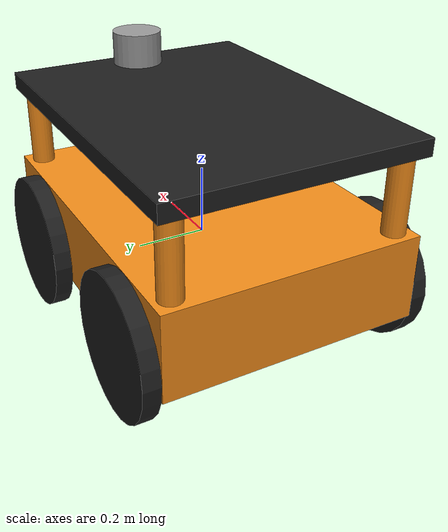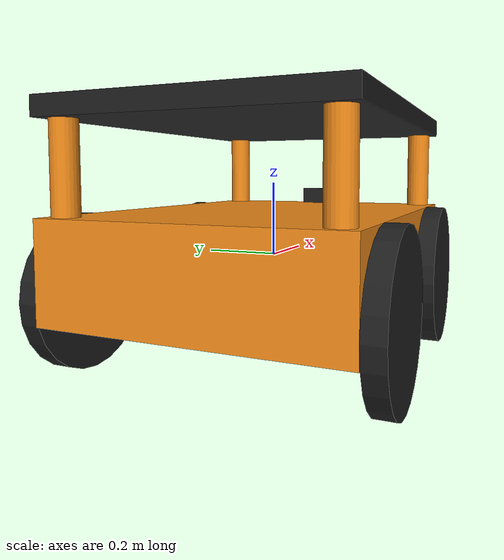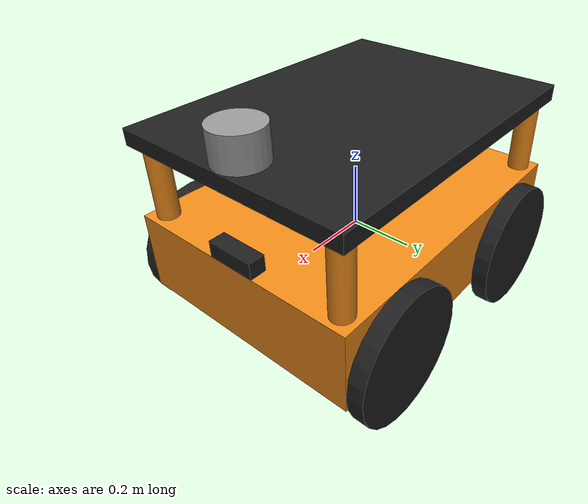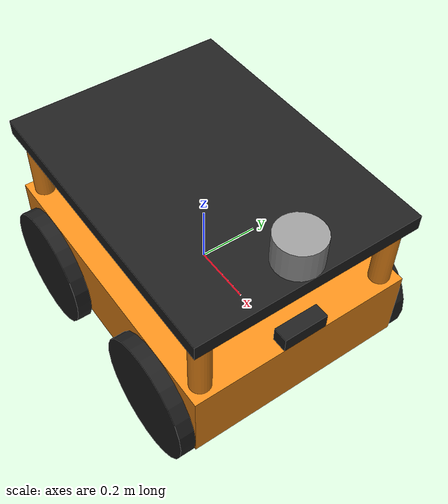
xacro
<?xml version="1.0"?>
<robot name="m4wr" xmlns:xacro="http://www.ros.org/wiki/xacro">

	<!-- INCLUDES -->
	<xacro:include filename="$(find gazebo_robots)/robots/common/materials.xacro"/>

	<!-- CONSTANTS -->
	<xacro:property name="chassis_length" value="1.0" />
	<xacro:property name="chassis_height" value="${chassis_length/4}"/>
	<xacro:property name="chassis_width" value="${chassis_length*3/4}"/>
	<xacro:property name="wheel_radius" value="${chassis_length/5}"/>
	<xacro:property name="wheel_thickness" value="${chassis_length/20}"/>
	<xacro:property name="sensor_plate_width" value="0.2"/>
	<xacro:property name="chassis_mass" value="20.0"/>
	<xacro:property name="wheel_mass" value="${chassis_mass/10}"/>
	<xacro:property name="i_value" value="1.0"/>
	<xacro:property name="i_value_w" value="0.2"/>
	<xacro:property name="wheel_damping" value="0.0"/>
	<xacro:property name="wheel_friction" value="10000.0"/>
	<xacro:property name="friction_const" value="500.0"/>
	<xacro:property name="pi" value="3.1415" />
	<xacro:property name="sensor_pole_margin" value="0.05"/>
	<xacro:property name="sensor_pole_length" value="${chassis_length/4}"/>
	<xacro:property name="sensor_pole_radius" value="${chassis_length/30}"/>

  <gazebo reference="link_chassis">
    <material>Gazebo/Orange</material>
  </gazebo>
  <gazebo reference="sensor_plate">
    <material>Gazebo/Black</material>
  </gazebo>

  <gazebo reference="front_left_sensor_pole">
    <material>Gazebo/Orange</material>
  </gazebo>
  <gazebo reference="front_right_sensor_pole">
    <material>Gazebo/Orange</material>
  </gazebo>
  <gazebo reference="rear_left_sensor_pole">
    <material>Gazebo/Orange</material>
  </gazebo>
  <gazebo reference="rear_right_sensor_pole">
    <material>Gazebo/Orange</material>
  </gazebo>

  <gazebo reference="left_front_wheel">
  	<mu1>0.2</mu1>
    <mu2>0.2</mu2>
    <slip1></slip1>
  	<material>Gazebo/Black</material>
  </gazebo>

  <gazebo reference="left_rear_wheel">
  	<mu1>0.2</mu1>
    <mu2>0.2</mu2>
  	<material>Gazebo/Black</material>
  </gazebo>

  <gazebo reference="right_front_wheel">
  	<mu1>0.2</mu1>
    <mu2>0.2</mu2>
  	<material>Gazebo/Black</material>
  </gazebo>

  <gazebo reference="right_rear_wheel">
  	<mu1>0.2</mu1>
    <mu2>0.2</mu2>
  	<material>Gazebo/Black</material>
  </gazebo>

  <gazebo reference="camera_box">
  	<material>Gazebo/Black</material>
  </gazebo>

  <gazebo reference="lidar_box">
  	<material>Gazebo/Gray</material>
  </gazebo>

	<!-- LINKS -->
	 <link name="link_chassis">
	 		<pose>0 0 0 0 0 0</pose>
		  <inertial>
		    <mass value="20"/>
		    <origin rpy="0 0 0" xyz="0 0 0"/>
		    <inertia ixx="${i_value}" ixy="0" ixz="0" iyy="${i_value}" iyz="0" izz="${i_value}"/>
		  </inertial>
		  <collision>
		  	<origin rpy="0 0 0" xyz="0 0 0"/>
		    <geometry>
		      <box size="${chassis_length} ${chassis_width} ${chassis_height}"/>
		    </geometry>
		  </collision>
		  <visual>
		    <origin rpy="0 0 0" xyz="0 0 0"/>
		    <geometry>
		      <box size="${chassis_length} ${chassis_width} ${chassis_height}"/>
		    </geometry>
		  </visual>

    </link>
	<!-- ################################ SENSORS ################################ -->
	<link name="front_left_sensor_pole">
		<visual>
			<origin rpy="0 ${pi/2} 0" xyz="0 0 0"/>
			<geometry>
				<cylinder length="${sensor_pole_length}" radius="${sensor_pole_radius}"/>
			</geometry>
		</visual>
		<collision>
			<origin rpy="0 ${pi/2} 0" xyz="0 0 0"/>
			<geometry>
				<cylinder length="${sensor_pole_length}" radius="${sensor_pole_radius}"/>
			</geometry>
		</collision>
		<inertial>
		    <mass value="1"/>
		    <origin rpy="0 0 0" xyz="0 0 0"/>
		    <inertia ixx="${i_value}" ixy="0" ixz="0" iyy="${i_value}" iyz="0" izz="${i_value}"/>
		 </inertial>
	</link>
	<link name="front_right_sensor_pole">
		<visual>
			<origin rpy="0 ${pi/2} 0" xyz="0 0 0"/>
			<geometry>
				<cylinder length="${sensor_pole_length}" radius="${sensor_pole_radius}"/>
			</geometry>
		</visual>
		<collision>
			<origin rpy="0 ${pi/2} 0" xyz="0 0 0"/>
			<geometry>
				<cylinder length="${sensor_pole_length}" radius="${sensor_pole_radius}"/>
			</geometry>
		</collision>
		<inertial>
		    <mass value="1"/>
		    <origin rpy="0 0 0" xyz="0 0 0"/>
		    <inertia ixx="${i_value}" ixy="0" ixz="0" iyy="${i_value}" iyz="0" izz="${i_value}"/>
		 </inertial>
	</link>

	<link name="rear_right_sensor_pole">
		<visual>
			<origin rpy="0 ${pi/2} 0" xyz="0 0 0"/>
			<geometry>
				<cylinder length="${sensor_pole_length}" radius="${sensor_pole_radius}"/>
			</geometry>
		</visual>
		<collision>
			<origin rpy="0 ${pi/2} 0" xyz="0 0 0"/>
			<geometry>
				<cylinder length="${sensor_pole_length}" radius="${sensor_pole_radius}"/>
			</geometry>
		</collision>
		<inertial>
		    <mass value="1"/>
		    <origin rpy="0 0 0" xyz="0 0 0"/>
		    <inertia ixx="${i_value}" ixy="0" ixz="0" iyy="${i_value}" iyz="0" izz="${i_value}"/>
		 </inertial>
	</link>

	<link name="rear_left_sensor_pole">
		<visual>
			<origin rpy="0 ${pi/2} 0" xyz="0 0 0"/>
			<geometry>
				<cylinder length="${sensor_pole_length}" radius="${sensor_pole_radius}"/>
			</geometry>
		</visual>
		<collision>
			<origin rpy="0 ${pi/2} 0" xyz="0 0 0"/>
			<geometry>
				<cylinder length="${sensor_pole_length}" radius="${sensor_pole_radius}"/>
			</geometry>
		</collision>
		<inertial>
		    <mass value="1"/>
		    <origin rpy="0 0 0" xyz="0 0 0"/>
		    <inertia ixx="${i_value}" ixy="0" ixz="0" iyy="${i_value}" iyz="0" izz="${i_value}"/>
		 </inertial>
	</link>

	<link name="sensor_plate">
		<visual>
			<origin rpy="0 0 0" xyz="0 0 0"/>
			<geometry>
				<box size="${chassis_length} ${chassis_width} 0.05"/>
			</geometry>
		</visual>
		<collision>
			<origin rpy="0 ${pi/2} 0" xyz="0 0 0"/>
			<geometry>
				<box size="${chassis_length} ${chassis_width} 0.05"/>
			</geometry>
		</collision>
		<inertial>
		    <mass value="2"/>
		    <origin rpy="0 0 0" xyz="0 0 0"/>
		    <inertia ixx="${i_value}" ixy="0" ixz="0" iyy="${i_value}" iyz="0" izz="${i_value}"/>
		 </inertial>
	</link>

	<link name="camera_box">
		<visual>
			<origin rpy="0 0 0" xyz="0 0 0"/>
			<geometry>
				<box size="0.05 0.15 0.05"/>
			</geometry>
		</visual>
		<collision>
			<origin rpy="0 ${pi/2} 0" xyz="0 0 0"/>
			<geometry>
				<box size="0.05 0.15 0.05"/>
			</geometry>
		</collision>
		<inertial>
		    <mass value="2"/>
		    <origin rpy="0 0 0" xyz="0 0 0"/>
		    <inertia ixx="${i_value}" ixy="0" ixz="0" iyy="${i_value}" iyz="0" izz="${i_value}"/>
		 </inertial>
	</link>

	<link name="lidar_box">
		<visual>
			<origin rpy="0 0 0" xyz="0 0 0"/>
			<geometry>
				<cylinder length="0.1" radius="0.075"/>
			</geometry>
		</visual>
		<collision>
			<origin rpy="0 0 0" xyz="0 0 0"/>
			<geometry>
				<cylinder length="0.1" radius="0.075"/>
			</geometry>
		</collision>
		<inertial>
		    <mass value="0.6"/>
		    <origin rpy="0 0 0" xyz="0 0 0"/>
		    <inertia ixx="${i_value}" ixy="0" ixz="0" iyy="${i_value}" iyz="0" izz="${i_value}"/>
		 </inertial>
	</link>

	<!-- ################################ WHEELS ################################ -->
	<link name="left_front_wheel">
		<inertial>
			<mass value="${wheel_mass}"/>
			<inertia ixx="${i_value_w}" ixy="0" ixz="0" iyy="${i_value_w}" iyz="0" izz="${i_value_w}"/>
      <origin rpy="0 1.5707 1.5707" xyz="0 0 0" />
		</inertial>
		<visual>
      <origin rpy="0 1.5707 1.5707" xyz="0 0 0" />
			<geometry>
				<cylinder length="${wheel_thickness}" radius="${wheel_radius}"/>
			</geometry>
		</visual>
		<collision>
      <origin rpy="0 1.5707 1.5707" xyz="0 0 0" />
			<geometry>
				<cylinder length="${wheel_thickness}" radius="${wheel_radius}"/>
			</geometry>
		</collision>
	</link>

	<link name="right_front_wheel">
		<inertial>
			<mass value="${wheel_mass}"/>
			<inertia ixx="${i_value_w}" ixy="0" ixz="0" iyy="${i_value_w}" iyz="0" izz="${i_value_w}"/>
			<origin rpy="0 1.5707 1.5707" xyz="0 0 0" />
		</inertial>
		<visual>
			<origin rpy="0 1.5707 1.5707" xyz="0 0 0" />
			<geometry>
				<cylinder length="${wheel_thickness}" radius="${wheel_radius}"/>
			</geometry>
		</visual>
		<collision>
			<origin rpy="0 1.5707 1.5707" xyz="0 0 0" />
			<geometry>
				<cylinder length="${wheel_thickness}" radius="${wheel_radius}"/>
			</geometry>
		</collision>
	</link>

	<link name="left_rear_wheel">
		<inertial>
			<origin rpy="0 1.5707 1.5707" xyz="0 0 0" />
			<mass value="${wheel_mass}"/>
			<inertia ixx="${i_value_w}" ixy="0" ixz="0" iyy="${i_value_w}" iyz="0" izz="${i_value_w}"/>
		</inertial>
		<visual>
			<origin rpy="0 1.5707 1.5707" xyz="0 0 0" />
			<geometry>
				<cylinder length="${wheel_thickness}" radius="${wheel_radius}"/>
			</geometry>
		</visual>
		<collision>
			<origin rpy="0 1.5707 1.5707" xyz="0 0 0" />
			<geometry>
				<cylinder length="${wheel_thickness}" radius="${wheel_radius}"/>
			</geometry>
		</collision>
	</link>

	<link name="right_rear_wheel">
		<inertial>
			<origin rpy="0 1.5707 1.5707" xyz="0 0 0" />
			<mass value="${wheel_mass}"/>
			<inertia ixx="${i_value_w}" ixy="0" ixz="0" iyy="${i_value_w}" iyz="0" izz="${i_value_w}"/>
		</inertial>
		<visual>
			<origin rpy="0 1.5707 1.5707" xyz="0 0 0" />
			<geometry>
				<cylinder length="${wheel_thickness}" radius="${wheel_radius}"/>
			</geometry>
		</visual>
		<collision>
			<origin rpy="0 1.5707 1.5707" xyz="0 0 0" />
			<geometry>
				<cylinder length="${wheel_thickness}" radius="${wheel_radius}"/>
			</geometry>
		</collision>
	</link>

	<!-- ################################ JOINTS ################################ -->
	<joint name="front_left_wheel_joint" type="continuous">
		<child link="left_front_wheel"/>
		<parent link="link_chassis"/>
		<origin xyz="${chassis_length/2 - wheel_radius} ${chassis_width/2 + wheel_thickness/2} ${chassis_height/2 - wheel_radius}" rpy="0 0 0"/>
		<axis rpy="0 0 0" xyz="0 1 0"/>
		<dynamics damping="${wheel_damping}" friction="${wheel_friction}" />
		<limit effort="10000" velocity="1000"/>
	</joint>

	<joint name="front_right_wheel_joint" type="continuous">
		<child link="right_front_wheel"/>
		<parent link="link_chassis"/>
		<origin xyz="${chassis_length/2 - wheel_radius} ${-(chassis_width/2 + wheel_thickness/2)} ${chassis_height/2 - wheel_radius}" rpy="0 0 0"/>
		<axis rpy="0 0 0" xyz="0 1 0"/>
		<dynamics damping="${wheel_damping}" friction="${wheel_friction}" />
		<limit effort="10000" velocity="1000"/>
	</joint>

	<joint name="rear_left_wheel_joint" type="continuous">
		<child link="left_rear_wheel"/>
		<parent link="link_chassis"/>
		<origin xyz="${-chassis_length/2 + wheel_radius} ${chassis_width/2 + wheel_thickness/2} ${chassis_height/2 - wheel_radius}" rpy="0 0 0"/>
		<axis rpy="0 0 0" xyz="0 1 0"/>
		<dynamics damping="${wheel_damping}" friction="${wheel_friction}" />
		<limit effort="10000" velocity="1000"/>
	</joint>

	<joint name="rear_right_wheel_joint" type="continuous">
		<child link="right_rear_wheel"/>
		<parent link="link_chassis"/>
		<origin xyz="${-chassis_length/2 + wheel_radius} ${-(chassis_width/2 + wheel_thickness/2)} ${chassis_height/2 - wheel_radius}" rpy="0 0 0"/>
		<axis rpy="0 0 0" xyz="0 1 0"/>
		<dynamics damping="${wheel_damping}" friction="${wheel_friction}" />
		<limit effort="10000" velocity="1000"/>
	</joint>

	<joint name="front_left_sensor_pole_joint" type="fixed">
		<child link="front_left_sensor_pole"/>
		<parent link="link_chassis"/>
		<origin xyz="${chassis_length/2 - sensor_pole_margin} ${chassis_width/2 - sensor_pole_margin} ${chassis_height}" rpy="0 1.57075 0"/>
	</joint>
	<joint name="front_right_sensor_pole_joint" type="fixed">
		<child link="front_right_sensor_pole"/>
		<parent link="link_chassis"/>
		<origin xyz="${chassis_length/2 - sensor_pole_margin} ${-(chassis_width/2 - sensor_pole_margin)} ${chassis_height}" rpy="0 1.57075 0"/>
	</joint>

	<joint name="rear_right_sensor_pole_joint" type="fixed">
		<child link="rear_right_sensor_pole"/>
		<parent link="link_chassis"/>
		<origin xyz="${-(chassis_length/2 - sensor_pole_margin)} ${-(chassis_width/2 - sensor_pole_margin)} ${chassis_height}" rpy="0 1.57075 0"/>
	</joint>

	<joint name="rear_left_sensor_pole_joint" type="fixed">
		<child link="rear_left_sensor_pole"/>
		<parent link="link_chassis"/>
		<origin xyz="${-(chassis_length/2 - sensor_pole_margin)} ${chassis_width/2 - sensor_pole_margin} ${chassis_height}" rpy="0 1.57075 0"/>
	</joint>

	<joint name="sensor_plate_joint" type="fixed">
		<child link="sensor_plate"/>
		<parent link="link_chassis"/>
		<origin xyz="0 0 ${chassis_height/2 + sensor_pole_length}" rpy="0 0 0"/>
	</joint>

	<joint name="camera_box_joint" type="fixed">
		<child link="camera_box"/>
		<parent link="link_chassis"/>
		<origin xyz="${chassis_length/2 - 0.025} 0 ${chassis_height/2 + 0.025}" rpy="0 0 0"/>
	</joint>

	<joint name="lidar_box_joint" type="fixed">
		<child link="lidar_box"/>
		<parent link="sensor_plate"/>
		<origin xyz="${chassis_length/2 - 0.075} 0 0.075" rpy="0 0 0"/>
	</joint>

	<!-- PLUGINS -->
	<gazebo>
		<plugin name="skid_steer_drive_controller" filename="libgazebo_ros_skid_steer_drive.so">
		  <updateRate>20.0</updateRate>
		  <robotNamespace>/m4wr</robotNamespace>
		  <leftFrontJoint>front_left_wheel_joint</leftFrontJoint>
		  <rightFrontJoint>front_right_wheel_joint</rightFrontJoint>
		  <leftRearJoint>rear_left_wheel_joint</leftRearJoint>
		  <rightRearJoint>rear_right_wheel_joint</rightRearJoint>
		  <wheelSeparation>0.4</wheelSeparation>
		  <wheelDiameter>0.2</wheelDiameter>
		  <robotBaseFrame>link_chassis</robotBaseFrame>
		  <torque>20</torque>
		  <topicName>cmd_vel</topicName>
		  <odometryTopic>odom</odometryTopic>
      <odometryFrame>odom</odometryFrame>
		  <broadcastTF>true</broadcastTF>
		  <alwaysOn>true</alwaysOn>
		</plugin>
	</gazebo>

	<gazebo reference="camera_box">
		<sensor type="camera" name="camera1">
      <update_rate>30.0</update_rate>
      <camera name="front_camera">
        <horizontal_fov>1.3962634</horizontal_fov>
        <image>
          <width>640</width>
          <height>480</height>
          <format>R8G8B8</format>
        </image>
        <clip>
          <near>0.02</near>
          <far>300</far>
        </clip>
        <noise>
          <type>gaussian</type>
          <!-- Noise is sampled independently per pixel on each frame.
               That pixel's noise value is added to each of its color
               channels, which at that point lie in the range [0,1]. -->
          <mean>0.0</mean>
          <stddev>0.007</stddev>
        </noise>
      </camera>
      <plugin name="camera_controller" filename="libgazebo_ros_camera.so">
        <alwaysOn>true</alwaysOn>
        <updateRate>0.0</updateRate>
        <cameraName>/m4wr/sensor/camera</cameraName>
        <imageTopicName>image_raw</imageTopicName>
        <cameraInfoTopicName>camera_info</cameraInfoTopicName>
        <frameName>camera_box</frameName>
        <hackBaseline>0.07</hackBaseline>
        <distortionK1>0.0</distortionK1>
        <distortionK2>0.0</distortionK2>
        <distortionK3>0.0</distortionK3>
        <distortionT1>0.0</distortionT1>
        <distortionT2>0.0</distortionT2>
      </plugin>
    </sensor>
	</gazebo>

	<gazebo reference="lidar_box">
			<sensor name="ouster" type="ray">
				<always_on>false</always_on>
				<update_rate>20.0</update_rate>
				<pose>0 0 0 0 0 0</pose>
				<ray>
					<scan>
						<horizontal>
							<samples>1024</samples>
							<resolution>1</resolution>
							<min_angle>${-pi}</min_angle>
							<max_angle>${pi}</max_angle>
						</horizontal>
						<vertical>
							<samples>16</samples>
							<resolution>1</resolution>
							<min_angle>${-30.67*pi/180}</min_angle>
							<max_angle>${10.67*pi/180}</max_angle>
						</vertical>
					</scan>
					<range>
						<min>0.8</min>
						<max>100.0</max>
						<resolution>0.02</resolution>
					</range>
				</ray>
				<!-- test plugin -->
				<plugin name="ouster_controller" filename="libgazebo_ros_block_laser.so">
					<gaussianNoise>0.005</gaussianNoise>
					<alwaysOn>true</alwaysOn>
					<updateRate>10</updateRate>
					<topicName>/m4wr/sensor/ouster/pointcloud</topicName>
					<frameName>os1</frameName>
					<hokuyoMinIntensity>101</hokuyoMinIntensity>
				</plugin>
			</sensor>
		</gazebo>
</robot>

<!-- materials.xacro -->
<robot>
	<material name="black">
    <color rgba="0.0 0.0 0.0 1.0"/>
  </material>

  <material name="blue">
    <color rgba="0.0 0.0 0.8 1.0"/>
  </material>

  <material name="green">
    <color rgba="0.0 1.0 0.0 1.0"/>
  </material>

  <material name="grey">
    <color rgba="0.2 0.2 0.2 1.0"/>
  </material>

  <material name="orange">
    <color rgba="${255/255} ${108/255} ${10/255} 1.0"/>
  </material>

  <material name="brown">
    <color rgba="${222/255} ${207/255} ${195/255} 1.0"/>
  </material>

  <material name="red">
    <color rgba="0.8 0.0 0.0 1.0"/>
  </material>

  <material name="white">
    <color rgba="1.0 1.0 1.0 1.0"/>
  </material>
</robot>
